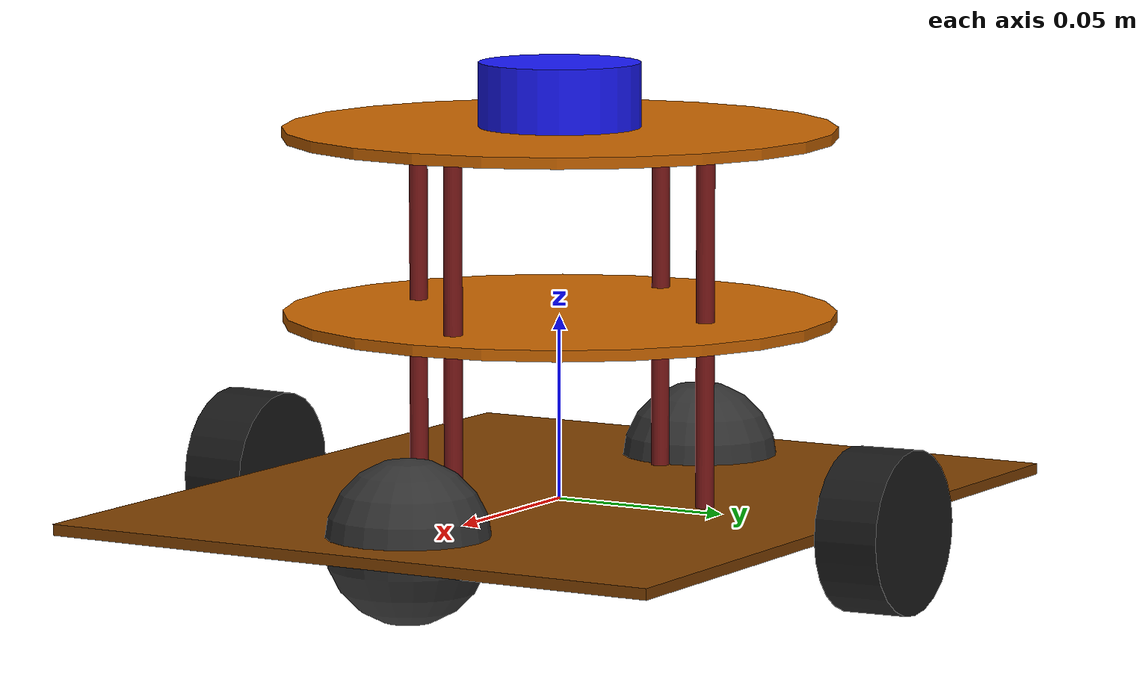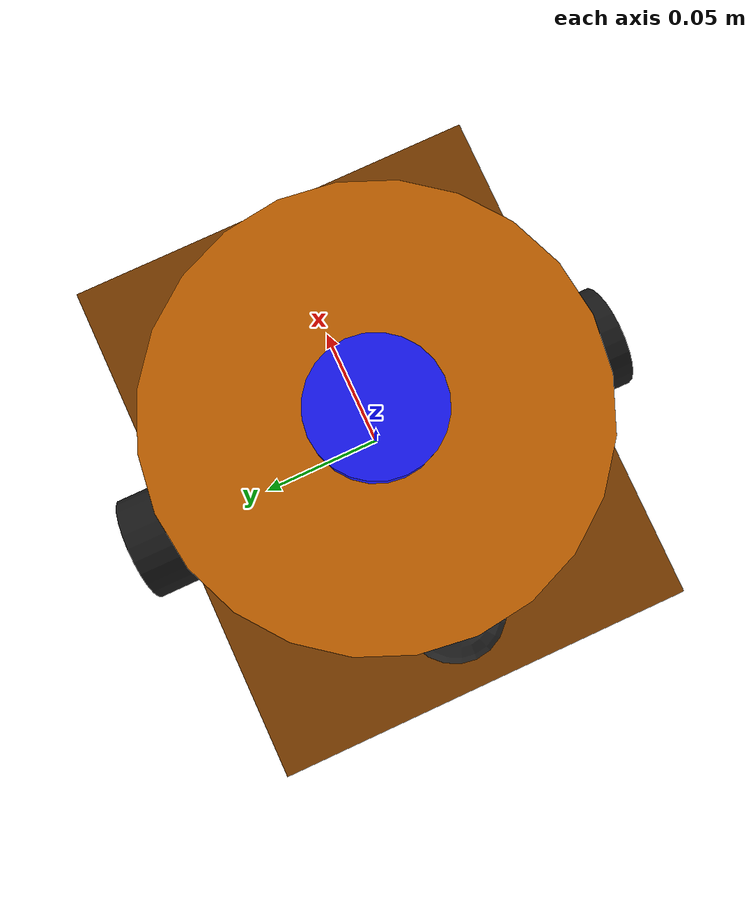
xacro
<?xml version="1.0"?>
<robot xmlns:xacro="http://www.ros.org/wiki/xacro" name="btechbot">

 <link name = "base_link">
 </link>

 <joint name = "chassis_joint" type = "fixed">
   <parent link = "base_link" />
   <child link = "chassis" />
   <origin xyz = "0 0 0" />
 </joint>

 <!--Chassis Link-->

  <link name = "chassis">
    <visual>
      <geometry>
        <box size = "0.22 0.18 0.003"/>
      </geometry>
      <origin xyz = "0 0 0"/>
      <material name = "jute_fibre">
        <color rgba = "0.5 0.25 0.0 1.0"/>
      </material>
    </visual>
    <collision>
      <geometry>
        <box size = "0.22 0.18 0.003"/>
      </geometry>
      <origin xyz = "0 0 0"/>
    </collision>
    <inertial>
      <mass value = "0.05" />
      <origin xyz = "0 0 0" rpy = "0 0 0" />
      <inertia ixx = "0.001953" ixz = "0" ixy="0" iyy = "0.01386" iyz = "0" izz = "0.014456" />
    </inertial>
  </link>

  <gazebo reference="chassis">
    <material>Gazebo/Orange</material>
  </gazebo>

  <!-- Left Wheel -->

  <link name = "left_wheel">
    <visual>
      <geometry>
        <cylinder radius = "0.022" length = "0.018" />
      </geometry>
      <material name = "black tire">
        <color rgba = "0.1 0.1 0.1 1.0"/>
      </material>
   </visual>
   <collision>
      <geometry>
        <cylinder radius = "0.022" length = "0.018" />
      </geometry>
   </collision>
   <inertial>
      <mass value = "0.018" />
      <origin xyz = "0 0 0" rpy = "0 0 0" />
      <inertia ixx = "0.0002" ixz = "0" ixy="0" iyy = "0.0002" iyz = "0" izz = "0.00004" />
    </inertial>
  </link>

  <gazebo reference="left_wheel">
    <material>Gazebo/Black</material>
  </gazebo>

  <joint name = "lwheel" type="continuous">
    <parent link = "base_link"/>
    <child link = "left_wheel"/>
    <origin xyz = "0 0.099 0" rpy = "1.587 0 0"/>
    <axis xyz = "0 0 -1"/>
  </joint>

 <!-- Right Wheel -->

  <link name = "right_wheel">
    <visual>
      <geometry>
        <cylinder radius = "0.022" length = "0.018" />
      </geometry>
      <material name = "black tire">
        <color rgba = "0.1 0.1 0.1 1.0"/>
      </material>
     </visual>
     <collision>
      <geometry>
        <cylinder radius = "0.022" length = "0.018" />
      </geometry>
     </collision>
     <inertial>
      <mass value = "0.018" />
      <origin xyz = "0 0 0" rpy = "0 0 0" />
      <inertia ixx = "0.0002" ixz = "0" ixy="0" iyy = "0.0002" iyz = "0" izz = "0.00004" />
    </inertial>
   </link>

   <gazebo reference="right_wheel">
    <material>Gazebo/Black</material>
  </gazebo>

  <joint name = "rwheel" type="continuous">
    <parent link = "base_link"/>
    <child link = "right_wheel"/>
    <origin xyz = "0 -0.099 0" rpy = "-1.587 0 0"/>
    <axis xyz = "0 0 1"/>
  </joint>

 <!-- Front Caster wheel -->

 <joint name = "fcaster" type = "fixed">
   <parent link = "base_link"/>
   <child link = "front_caster" />
   <origin xyz = "0.0775 0 0" rpy = "0 0 0"/>
   <!--axis xyz = "1 1 1" /-->
 </joint>

 <gazebo reference="front_caster">
   <material>Gazebo/Violet</material>
   <mu1 value="0.001"/>
   <mu2 value="0.001"/>
 </gazebo>

 <link name = "front_caster">
   <visual>
     <geometry>
       <sphere radius = "0.022" />
     </geometry>
     <material name = "grey">
       <color rgba = "0.2 0.2 0.2 1.0" />
     </material>
   </visual>
   <collision>
     <geometry>
       <sphere radius = "0.022" />
     </geometry>
   </collision>
   <inertial>
      <mass value = "0.015" />
      <origin xyz = "0 0 0" rpy = "0 0 0" />
      <inertia ixx = "0.000108" ixy="0" ixz = "0" iyy = "0.000108" iyz = "0" izz = "0.000108" />
    </inertial>
 </link>

 <!-- Back Caster Wheel -->

 <joint name = "bcaster" type = "fixed">
   <parent link = "base_link"/>
   <child link = "back_caster" />
   <origin xyz = "-0.0775 0 0" rpy = "0 0 0"/>
   <!--axis xyz = "1 1 1" /-->
 </joint>

 <link name = "back_caster">
   <visual>
     <geometry>
        <sphere radius = "0.022" />
     </geometry>
     <material name = "grey">
       <color rgba = "0.2 0.2 0.2 1.0" />
     </material>
   </visual>
   <collision>
     <geometry>
        <sphere radius = "0.022" />
     </geometry>
   </collision>
   <inertial>
      <mass value = "0.015" />
      <origin xyz = "0 0 0" rpy = "0 0 0" />
      <inertia ixx = "0.000108" ixy="0" ixz = "0" iyy = "0.000108" iyz = "0" izz = "0.000108" />
    </inertial>
 </link>

  <!-- Joint and links for Columns of 1st floor-->

  <link name = "column1_1">
    <visual>
      <geometry>
        <cylinder radius = "0.0025" length = "0.05"/>
      </geometry>
      <material name = "col">
        <color rgba = "0.5 0.1 0.1 1.0" />
      </material>
   </visual>
   <collision>
      <geometry>
        <cylinder radius = "0.0025" length = "0.05"/>
      </geometry>
   </collision>
   <inertial>
      <mass value = "0.01" />
      <origin xyz = "0 0 0" rpy = "0 0 0" />
      <inertia ixx = "0.000003" ixy="0" ixz = "0" iyy = "0.000050" iyz = "0" izz = "0.000050" />
    </inertial>
 </link>

 <joint name = "column1.1" type = "fixed">
   <parent link = "chassis" />
   <child link = "column1_1" />
   <origin xyz = "0.055 0 0.025" rpy = "0 0 0" />
 </joint>

 <!-- Column1.2 -->

 <joint name = "column1.2" type = "fixed">
   <parent link = "chassis" />
   <child link = "column1_2" />
   <origin xyz = "-0.055 0 0.025" rpy = "0 0 0" />
 </joint>

 <link name = "column1_2">
   <visual>
     <geometry>
       <cylinder radius = "0.0025" length = "0.05"/>
     </geometry>
     <material name = "col">
       <color rgba = "0.5 0.1 0.1 1.0" />
     </material>
   </visual>
   <collision>
     <geometry>
       <cylinder radius = "0.0025" length = "0.05"/>
     </geometry>
   </collision>
   <inertial>
      <mass value = "0.01" />
      <origin xyz = "0 0 0" rpy = "0 0 0" />
      <inertia ixx = "0.000003" ixy="0" ixz = "0" iyy = "0.000050" iyz = "0" izz = "0.000050" />
    </inertial>
 </link>

 <!-- Column1.3 -->

 <joint name = "column1.3" type = "fixed">
   <parent link = "chassis" />
   <child link = "column1_3" />
   <origin xyz = "0 -0.045 0.025" rpy = "0 0 0" />
 </joint>

 <link name = "column1_3">
   <visual>
     <geometry>
       <cylinder radius = "0.0025" length = "0.05"/>
     </geometry>
     <material name = "col">
       <color rgba = "0.5 0.1 0.1 1.0" />
     </material>
   </visual>
   <collision>
     <geometry>
       <cylinder radius = "0.0025" length = "0.05"/>
     </geometry>
   </collision>
   <inertial>
      <mass value = "0.01" />
      <origin xyz = "0 0 0" rpy = "0 0 0" />
      <inertia ixx = "0.000003" ixy="0" ixz = "0" iyy = "0.000050" iyz = "0" izz = "0.000050" />
    </inertial>
 </link>

 <!-- Column1.4 -->

 <joint name = "column1.4" type = "fixed">
   <parent link = "chassis" />
   <child link = "column1_4" />
   <origin xyz = "0 0.045 0.025" rpy = "0 0 0" />
 </joint>

 <link name = "column1_4">
    <visual>
      <geometry>
        <cylinder radius = "0.0025" length = "0.05"/>
      </geometry>
      <material name = "col">
	 <color rgba = "0.5 0.1 0.1 1.0" />
      </material>
   </visual>
   <collision>
      <geometry>
        <cylinder radius = "0.0025" length = "0.05"/>
      </geometry>
   </collision>
   <inertial>
      <mass value = "0.01" />
      <origin xyz = "0 0 0" rpy = "0 0 0" />
      <inertia ixx = "0.000003" ixy="0" ixz = "0" iyy = "0.000050" iyz = "0" izz = "0.000050" />
    </inertial>
 </link>

 <!-- Floor 1 -->

 <link name = "floor1">
   <visual>
     <geometry>
       <cylinder radius = "0.075" length = "0.003" />
     </geometry>
     <material name = "white">
       <color rgba = "0.8 0.4 0.0 1" />
     </material>
   </visual>
   <collision>
     <geometry>
       <cylinder radius = "0.075" length = "0.003" />
     </geometry>
   </collision>
   <inertial>
      <mass value = "0.04" />
      <origin xyz = "0 0 0" rpy = "0 0 0" />
      <inertia ixx = "0.000625" ixy="0" ixz = "0" iyy = "0.000625" iyz = "0" izz = "0.00008333" />
    </inertial>
 </link>

 <gazebo reference="floor1">
    <material>Gazebo/Red</material>
  </gazebo>

 <!--Column Floor Joints-->

 <joint name = "floor1.1" type = "fixed">
   <parent link = "column1_1" />
   <child link = "floor1" />
   <origin xyz = "-0.055 0 0.025" rpy = "0 0 0" />
 </joint>

<!-- Joints and links for Floor 2 Columns -->

 <link name = "column2_1">
   <visual>
     <geometry>
       <cylinder radius = "0.0025" length = "0.05"/>
     </geometry>
     <material name = "col">
        <color rgba = "0.5 0.1 0.1 1.0" />
     </material>
   </visual>
   <collision>
     <geometry>
       <cylinder radius = "0.0025" length = "0.05"/>
     </geometry>
   </collision>
   <inertial>
      <mass value = "0.01" />
      <origin xyz = "0 0 0" rpy = "0 0 0" />
      <inertia ixx = "0.000003" ixy="0" ixz = "0" iyy = "0.000050" iyz = "0" izz = "0.000050" />
    </inertial>
 </link>

 <joint name = "column2.1" type = "fixed">
    <parent link = "floor1" />
    <child link = "column2_1" />
    <origin xyz = "0.055 0 0.025" rpy = "0 0 0" />
 </joint>

 <!-- Column2.2 -->

 <joint name = "column2.2" type = "fixed">
   <parent link = "floor1" />
   <child link = "column2_2" />
   <origin xyz = "-0.055 0 0.025" rpy = "0 0 0" />
 </joint>

 <link name = "column2_2">
   <visual>
     <geometry>
       <cylinder radius = "0.0025" length = "0.05"/>
     </geometry>
     <material name = "col">
       <color rgba = "0.5 0.1 0.1 1.0" />
     </material>
   </visual>
   <collision>
     <geometry>
       <cylinder radius = "0.0025" length = "0.05"/>
     </geometry>
   </collision>
   <inertial>
      <mass value = "0.01" />
      <origin xyz = "0 0 0" rpy = "0 0 0" />
      <inertia ixx = "0.000003" ixy="0" ixz = "0" iyy = "0.000050" iyz = "0" izz = "0.000050" />
    </inertial>
  </link>

 <!-- Column2.3 -->

 <joint name = "column2.3" type = "fixed">
   <parent link = "floor1" />
   <child link = "column2_3" />
   <origin xyz = "0 -0.045 0.025" rpy = "0 0 0" />
 </joint>

 <link name = "column2_3">
   <visual>
     <geometry>
        <cylinder radius = "0.0025" length = "0.05"/>
     </geometry>
     <material name = "col">
       <color rgba = "0.5 0.1 0.1 1.0" />
     </material>
   </visual>
   <collision>
     <geometry>
        <cylinder radius = "0.0025" length = "0.05"/>
     </geometry>
   </collision>
   <inertial>
      <mass value = "0.01" />
      <origin xyz = "0 0 0" rpy = "0 0 0" />
      <inertia ixx = "0.000003" ixy="0" ixz = "0" iyy = "0.000050" iyz = "0" izz = "0.000050" />
    </inertial>
 </link>

 <!-- Column2.4 -->

 <joint name = "column2.4" type = "fixed">
   <parent link = "floor1" />
   <child link = "column2_4" />
   <origin xyz = "0 0.045 0.025" rpy = "0 0 0" />
 </joint>

 <link name = "column2_4" type = "fixed">
   <visual>
     <geometry>
       <cylinder radius = "0.0025" length = "0.05" />
     </geometry>
     <material name = "col">
       <color rgba = "0.5 0.1 0.1 1.0" />
     </material>
   </visual>
   <collision>
     <geometry>
       <cylinder radius = "0.0025" length = "0.05" />
     </geometry>
   </collision>
   <inertial>
      <mass value = "0.01" />
      <origin xyz = "0 0 0" rpy = "0 0 0" />
      <inertia ixx = "0.000003" ixy="0" ixz = "0" iyy = "0.000050" iyz = "0" izz = "0.000050" />
    </inertial>
 </link>

 <!-- Floor 2 -->

 <link name = "floor2">
   <visual>
     <geometry>
       <cylinder radius = "0.075" length = "0.003" />
     </geometry>
     <material name = "white">
       <color rgba = "0.8 0.4 0.0 1" />
     </material>
   </visual>
   <collision>
     <geometry>
       <cylinder radius = "0.075" length = "0.003" />
     </geometry>
   </collision>
   <inertial>
      <mass value = "0.04" />
      <origin xyz = "0 0 0" rpy = "0 0 0" />
      <inertia ixx = "0.000625" ixy="0" ixz = "0" iyy = "0.000625" iyz = "0" izz = "0.00008333" />
    </inertial>
 </link>

  <gazebo reference="floor2">
    <material>Gazebo/Red</material>
  </gazebo>

 <!--Column Floor Joints-->

 <joint name = "floor2.2" type = "fixed">
   <parent link = "column2_2" />
   <child link = "floor2" />
   <origin xyz = "0.055 0 0.025" rpy = "0 0 0" />
 </joint>

 <joint name="laser_joint" type="fixed">
  <parent link="floor2"/>
  <child link="laser_frame"/>
  <origin xyz="0 0 0.01" rpy="0 0 0"/>
</joint>

<link name="laser_frame">
  <visual>
      <geometry>
        <cylinder radius = "0.022" length = "0.018" />
      </geometry>
      <material name = "blue">
        <color rgba = "0.1 0.1 1.0 1.0"/>
      </material>
   </visual>
   <collision>
      <geometry>
        <cylinder radius = "0.022" length = "0.018" />
      </geometry>
   </collision>
   <inertial>
      <mass value = "0.018" />
      <origin xyz = "0 0 0" rpy = "0 0 0" />
      <inertia ixx = "0.0002" ixz = "0" ixy="0" iyy = "0.0002" iyz = "0" izz = "0.00004" />
    </inertial>
</link>

<!-- LiDAR setup for gazbeo -->

<gazebo reference="laser_frame">
	<sensor name="laser" type="ray">
		<pose>0 0 0 0 0 0</pose>
		<visualize>true</visualize>
		<update_rate>10</update_rate>
		<ray>
			<scan>
			<horizontal>
				<samples>359</samples>
				<resolution>1</resolution>
				<min_angle>-3.14</min_angle>
				<max_angle>3.14</max_angle>
			</horizontal>
			</scan>
			<range>
				<min>0.3</min>
				<max>12</max>
				<resolution>0.01</resolution>
			</range>
		</ray>
		<plugin name="laser_controller" filename="libgazebo_ros_laser.so">
			<ros>
				<argument>=~/out:=scan</argument>
			</ros>
			<topicName>/scan</topicName>
			<frameName>laser_frame</frameName>
		</plugin>
	</sensor>
</gazebo>

<!--ROS_CONTROL SETUP-->

<!--Working libgazebo_diff_drive.so  controller setup-->

<gazebo>
	<plugin name="diff_drive_btechbot" filename="libgazebo_ros_diff_drive.so">

		<leftJoint>lwheel</leftJoint>
		<rightJoint>rwheel</rightJoint>
		<wheelSeparation>0.18</wheelSeparation>
		<wheelDiameter>0.044</wheelDiameter>
		<commandTopic>cmd_vel</commandTopic>
		<odomTopic>odom</odomTopic>
		<maxTorque>100</maxTorque>
		<maxAcceleration>10.0</maxAcceleration>

		<odometryFrame>odom</odometryFrame>
		<robotBaseFrame>base_link</robotBaseFrame>
	        <publishWheelJointState>true</publishWheelJointState>
		<publishOdom>true</publishOdom>
		<publishOdomTf>true</publishOdomTf>
		<publishWheelTf>true</publishWheelTf>
</plugin>
</gazebo>

</robot>
